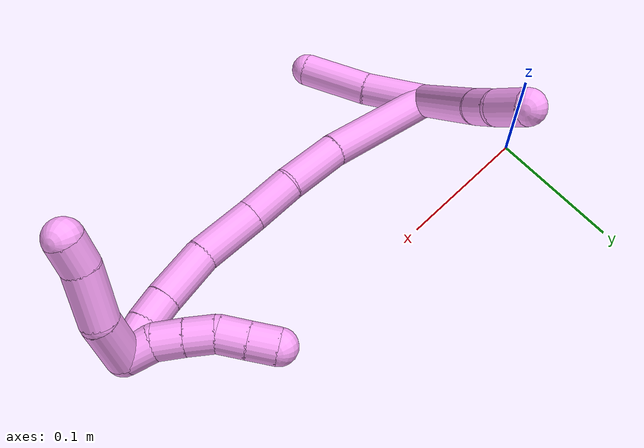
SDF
<sdf version="1.7">
 <world name="default">
  <model name="4">
   <static>0</static>
   <link name="4">
    <collision name="collision-cylinder-e_1_2_8">
     <pose>-0.014821 0.026364 0.039945 -0.583371 -0.300295 0.090785</pose>
     <geometry><cylinder><radius>0.0125</radius><length>0.100207</length></cylinder></geometry>
     <surface>
      <friction><ode><mu>1.16</mu><mu2>1.16</mu2><slip1>0</slip1><slip2>0</slip2></ode></friction>
      <contact><ode><kp>1e+06</kp><kd>1</kd><max_vel>0</max_vel><min_depth>0.001</min_depth></ode></contact>
     </surface>
    </collision>
    <visual name="visual-cylinder-e_1_2_8">
     <pose>-0.014821 0.026364 0.039945 -0.583371 -0.300295 0.090785</pose>
     <geometry><cylinder><radius>0.0125</radius><length>0.100207</length></cylinder></geometry>
     <material><ambient>1 0.65098 0.996078 1</ambient></material>
    </visual>
    <collision name="collision-cylinder-e_2_8_9">
     <pose>-0.033493 0.059829 0.087687 -0.73876 -0.350192 0.136766</pose>
     <geometry><cylinder><radius>0.0125</radius><length>0.022454</length></cylinder></geometry>
     <surface>
      <friction><ode><mu>1.16</mu><mu2>1.16</mu2><slip1>0</slip1><slip2>0</slip2></ode></friction>
      <contact><ode><kp>1e+06</kp><kd>1</kd><max_vel>0</max_vel><min_depth>0.001</min_depth></ode></contact>
     </surface>
    </collision>
    <visual name="visual-cylinder-e_2_8_9">
     <pose>-0.033493 0.059829 0.087687 -0.73876 -0.350192 0.136766</pose>
     <geometry><cylinder><radius>0.0125</radius><length>0.022454</length></cylinder></geometry>
     <material><ambient>1 0.65098 0.996078 1</ambient></material>
    </visual>
    <collision name="collision-cylinder-e_3_9_6">
     <pose>-0.042738 0.07746 0.102331 -0.994238 -0.405594 0.22221</pose>
     <geometry><cylinder><radius>0.0125</radius><length>0.02734</length></cylinder></geometry>
     <surface>
      <friction><ode><mu>1.16</mu><mu2>1.16</mu2><slip1>0</slip1><slip2>0</slip2></ode></friction>
      <contact><ode><kp>1e+06</kp><kd>1</kd><max_vel>0</max_vel><min_depth>0.001</min_depth></ode></contact>
     </surface>
    </collision>
    <visual name="visual-cylinder-e_3_9_6">
     <pose>-0.042738 0.07746 0.102331 -0.994238 -0.405594 0.22221</pose>
     <geometry><cylinder><radius>0.0125</radius><length>0.02734</length></cylinder></geometry>
     <material><ambient>1 0.65098 0.996078 1</ambient></material>
    </visual>
    <collision name="collision-cylinder-e_1_2_10">
     <pose>0.003351 -0.023622 0.000468 1.55097 0.140905 0.138147</pose>
     <geometry><cylinder><radius>0.0125</radius><length>0.047727</length></cylinder></geometry>
     <surface>
      <friction><ode><mu>1.16</mu><mu2>1.16</mu2><slip1>0</slip1><slip2>0</slip2></ode></friction>
      <contact><ode><kp>1e+06</kp><kd>1</kd><max_vel>0</max_vel><min_depth>0.001</min_depth></ode></contact>
     </surface>
    </collision>
    <visual name="visual-cylinder-e_1_2_10">
     <pose>0.003351 -0.023622 0.000468 1.55097 0.140905 0.138147</pose>
     <geometry><cylinder><radius>0.0125</radius><length>0.047727</length></cylinder></geometry>
     <material><ambient>1 0.65098 0.996078 1</ambient></material>
    </visual>
    <collision name="collision-cylinder-e_2_10_5">
     <pose>0.007737 -0.073356 0.000455 1.58924 0.039577 0.040313</pose>
     <geometry><cylinder><radius>0.0125</radius><length>0.052273</length></cylinder></geometry>
     <surface>
      <friction><ode><mu>1.16</mu><mu2>1.16</mu2><slip1>0</slip1><slip2>0</slip2></ode></friction>
      <contact><ode><kp>1e+06</kp><kd>1</kd><max_vel>0</max_vel><min_depth>0.001</min_depth></ode></contact>
     </surface>
    </collision>
    <visual name="visual-cylinder-e_2_10_5">
     <pose>0.007737 -0.073356 0.000455 1.58924 0.039577 0.040313</pose>
     <geometry><cylinder><radius>0.0125</radius><length>0.052273</length></cylinder></geometry>
     <material><ambient>1 0.65098 0.996078 1</ambient></material>
    </visual>
    <collision name="collision-cylinder-e_1_2_11">
     <pose>0.020153 -0.019948 0.034787 0.520654 0.465703 0.126174</pose>
     <geometry><cylinder><radius>0.0125</radius><length>0.08976</length></cylinder></geometry>
     <surface>
      <friction><ode><mu>1.16</mu><mu2>1.16</mu2><slip1>0</slip1><slip2>0</slip2></ode></friction>
      <contact><ode><kp>1e+06</kp><kd>1</kd><max_vel>0</max_vel><min_depth>0.001</min_depth></ode></contact>
     </surface>
    </collision>
    <visual name="visual-cylinder-e_1_2_11">
     <pose>0.020153 -0.019948 0.034787 0.520654 0.465703 0.126174</pose>
     <geometry><cylinder><radius>0.0125</radius><length>0.08976</length></cylinder></geometry>
     <material><ambient>1 0.65098 0.996078 1</ambient></material>
    </visual>
    <collision name="collision-cylinder-e_2_11_12">
     <pose>0.051481 -0.047194 0.087364 0.389306 0.526421 0.106149</pose>
     <geometry><cylinder><radius>0.0125</radius><length>0.04448</length></cylinder></geometry>
     <surface>
      <friction><ode><mu>1.16</mu><mu2>1.16</mu2><slip1>0</slip1><slip2>0</slip2></ode></friction>
      <contact><ode><kp>1e+06</kp><kd>1</kd><max_vel>0</max_vel><min_depth>0.001</min_depth></ode></contact>
     </surface>
    </collision>
    <visual name="visual-cylinder-e_2_11_12">
     <pose>0.051481 -0.047194 0.087364 0.389306 0.526421 0.106149</pose>
     <geometry><cylinder><radius>0.0125</radius><length>0.04448</length></cylinder></geometry>
     <material><ambient>1 0.65098 0.996078 1</ambient></material>
    </visual>
    <collision name="collision-cylinder-e_3_12_13">
     <pose>0.073765 -0.060577 0.117603 0.454632 0.675789 0.162197</pose>
     <geometry><cylinder><radius>0.0125</radius><length>0.035521</length></cylinder></geometry>
     <surface>
      <friction><ode><mu>1.16</mu><mu2>1.16</mu2><slip1>0</slip1><slip2>0</slip2></ode></friction>
      <contact><ode><kp>1e+06</kp><kd>1</kd><max_vel>0</max_vel><min_depth>0.001</min_depth></ode></contact>
     </surface>
    </collision>
    <visual name="visual-cylinder-e_3_12_13">
     <pose>0.073765 -0.060577 0.117603 0.454632 0.675789 0.162197</pose>
     <geometry><cylinder><radius>0.0125</radius><length>0.035521</length></cylinder></geometry>
     <material><ambient>1 0.65098 0.996078 1</ambient></material>
    </visual>
    <collision name="collision-cylinder-e_4_13_14">
     <pose>0.09708 -0.07388 0.147458 0.393085 0.57483 0.11758</pose>
     <geometry><cylinder><radius>0.0125</radius><length>0.0449</length></cylinder></geometry>
     <surface>
      <friction><ode><mu>1.16</mu><mu2>1.16</mu2><slip1>0</slip1><slip2>0</slip2></ode></friction>
      <contact><ode><kp>1e+06</kp><kd>1</kd><max_vel>0</max_vel><min_depth>0.001</min_depth></ode></contact>
     </surface>
    </collision>
    <visual name="visual-cylinder-e_4_13_14">
     <pose>0.09708 -0.07388 0.147458 0.393085 0.57483 0.11758</pose>
     <geometry><cylinder><radius>0.0125</radius><length>0.0449</length></cylinder></geometry>
     <material><ambient>1 0.65098 0.996078 1</ambient></material>
    </visual>
    <collision name="collision-cylinder-e_5_14_15">
     <pose>0.120549 -0.083762 0.181179 0.161884 0.598017 0.05</pose>
     <geometry><cylinder><radius>0.0125</radius><length>0.040008</length></cylinder></geometry>
     <surface>
      <friction><ode><mu>1.16</mu><mu2>1.16</mu2><slip1>0</slip1><slip2>0</slip2></ode></friction>
      <contact><ode><kp>1e+06</kp><kd>1</kd><max_vel>0</max_vel><min_depth>0.001</min_depth></ode></contact>
     </surface>
    </collision>
    <visual name="visual-cylinder-e_5_14_15">
     <pose>0.120549 -0.083762 0.181179 0.161884 0.598017 0.05</pose>
     <geometry><cylinder><radius>0.0125</radius><length>0.040008</length></cylinder></geometry>
     <material><ambient>1 0.65098 0.996078 1</ambient></material>
    </visual>
    <collision name="collision-cylinder-e_6_15_16">
     <pose>0.13774 -0.087123 0.205779 0.083921 0.619543 0.026875</pose>
     <geometry><cylinder><radius>0.0125</radius><length>0.020421</length></cylinder></geometry>
     <surface>
      <friction><ode><mu>1.16</mu><mu2>1.16</mu2><slip1>0</slip1><slip2>0</slip2></ode></friction>
      <contact><ode><kp>1e+06</kp><kd>1</kd><max_vel>0</max_vel><min_depth>0.001</min_depth></ode></contact>
     </surface>
    </collision>
    <visual name="visual-cylinder-e_6_15_16">
     <pose>0.13774 -0.087123 0.205779 0.083921 0.619543 0.026875</pose>
     <geometry><cylinder><radius>0.0125</radius><length>0.020421</length></cylinder></geometry>
     <material><ambient>1 0.65098 0.996078 1</ambient></material>
    </visual>
    <collision name="collision-cylinder-e_7_16_1">
     <pose>0.150733 -0.086999 0.224288 -0.080068 0.603073 -0.024915</pose>
     <geometry><cylinder><radius>0.0125</radius><length>0.024909</length></cylinder></geometry>
     <surface>
      <friction><ode><mu>1.16</mu><mu2>1.16</mu2><slip1>0</slip1><slip2>0</slip2></ode></friction>
      <contact><ode><kp>1e+06</kp><kd>1</kd><max_vel>0</max_vel><min_depth>0.001</min_depth></ode></contact>
     </surface>
    </collision>
    <visual name="visual-cylinder-e_7_16_1">
     <pose>0.150733 -0.086999 0.224288 -0.080068 0.603073 -0.024915</pose>
     <geometry><cylinder><radius>0.0125</radius><length>0.024909</length></cylinder></geometry>
     <material><ambient>1 0.65098 0.996078 1</ambient></material>
    </visual>
    <collision name="collision-cylinder-e_1_1_17">
     <pose>0.141963 -0.091151 0.244786 0.450753 -0.946241 -0.233658</pose>
     <geometry><cylinder><radius>0.0125</radius><length>0.039036</length></cylinder></geometry>
     <surface>
      <friction><ode><mu>1.16</mu><mu2>1.16</mu2><slip1>0</slip1><slip2>0</slip2></ode></friction>
      <contact><ode><kp>1e+06</kp><kd>1</kd><max_vel>0</max_vel><min_depth>0.001</min_depth></ode></contact>
     </surface>
    </collision>
    <visual name="visual-cylinder-e_1_1_17">
     <pose>0.141963 -0.091151 0.244786 0.450753 -0.946241 -0.233658</pose>
     <geometry><cylinder><radius>0.0125</radius><length>0.039036</length></cylinder></geometry>
     <material><ambient>1 0.65098 0.996078 1</ambient></material>
    </visual>
    <collision name="collision-cylinder-e_2_17_18">
     <pose>0.108255 -0.102579 0.259574 0.960398 -1.15565 -0.654826</pose>
     <geometry><cylinder><radius>0.0125</radius><length>0.039067</length></cylinder></geometry>
     <surface>
      <friction><ode><mu>1.16</mu><mu2>1.16</mu2><slip1>0</slip1><slip2>0</slip2></ode></friction>
      <contact><ode><kp>1e+06</kp><kd>1</kd><max_vel>0</max_vel><min_depth>0.001</min_depth></ode></contact>
     </surface>
    </collision>
    <visual name="visual-cylinder-e_2_17_18">
     <pose>0.108255 -0.102579 0.259574 0.960398 -1.15565 -0.654826</pose>
     <geometry><cylinder><radius>0.0125</radius><length>0.039067</length></cylinder></geometry>
     <material><ambient>1 0.65098 0.996078 1</ambient></material>
    </visual>
    <collision name="collision-cylinder-e_3_18_4">
     <pose>0.081281 -0.113407 0.268326 0.801283 -0.981168 -0.444978</pose>
     <geometry><cylinder><radius>0.0125</radius><length>0.021897</length></cylinder></geometry>
     <surface>
      <friction><ode><mu>1.16</mu><mu2>1.16</mu2><slip1>0</slip1><slip2>0</slip2></ode></friction>
      <contact><ode><kp>1e+06</kp><kd>1</kd><max_vel>0</max_vel><min_depth>0.001</min_depth></ode></contact>
     </surface>
    </collision>
    <visual name="visual-cylinder-e_3_18_4">
     <pose>0.081281 -0.113407 0.268326 0.801283 -0.981168 -0.444978</pose>
     <geometry><cylinder><radius>0.0125</radius><length>0.021897</length></cylinder></geometry>
     <material><ambient>1 0.65098 0.996078 1</ambient></material>
    </visual>
    <collision name="collision-cylinder-e_1_1_19">
     <pose>0.15169 -0.079844 0.229762 -2.21418 -0.656955 1.19648</pose>
     <geometry><cylinder><radius>0.0125</radius><length>0.02</length></cylinder></geometry>
     <surface>
      <friction><ode><mu>1.16</mu><mu2>1.16</mu2><slip1>0</slip1><slip2>0</slip2></ode></friction>
      <contact><ode><kp>1e+06</kp><kd>1</kd><max_vel>0</max_vel><min_depth>0.001</min_depth></ode></contact>
     </surface>
    </collision>
    <visual name="visual-cylinder-e_1_1_19">
     <pose>0.15169 -0.079844 0.229762 -2.21418 -0.656955 1.19648</pose>
     <geometry><cylinder><radius>0.0125</radius><length>0.02</length></cylinder></geometry>
     <material><ambient>1 0.65098 0.996078 1</ambient></material>
    </visual>
    <collision name="collision-cylinder-e_2_19_20">
     <pose>0.141821 -0.065125 0.221064 -2.01089 -0.385622 0.597078</pose>
     <geometry><cylinder><radius>0.0125</radius><length>0.02</length></cylinder></geometry>
     <surface>
      <friction><ode><mu>1.16</mu><mu2>1.16</mu2><slip1>0</slip1><slip2>0</slip2></ode></friction>
      <contact><ode><kp>1e+06</kp><kd>1</kd><max_vel>0</max_vel><min_depth>0.001</min_depth></ode></contact>
     </surface>
    </collision>
    <visual name="visual-cylinder-e_2_19_20">
     <pose>0.141821 -0.065125 0.221064 -2.01089 -0.385622 0.597078</pose>
     <geometry><cylinder><radius>0.0125</radius><length>0.02</length></cylinder></geometry>
     <material><ambient>1 0.65098 0.996078 1</ambient></material>
    </visual>
    <collision name="collision-cylinder-e_3_20_21">
     <pose>0.134611 -0.048163 0.21331 -1.98843 -0.352127 0.534087</pose>
     <geometry><cylinder><radius>0.0125</radius><length>0.02</length></cylinder></geometry>
     <surface>
      <friction><ode><mu>1.16</mu><mu2>1.16</mu2><slip1>0</slip1><slip2>0</slip2></ode></friction>
      <contact><ode><kp>1e+06</kp><kd>1</kd><max_vel>0</max_vel><min_depth>0.001</min_depth></ode></contact>
     </surface>
    </collision>
    <visual name="visual-cylinder-e_3_20_21">
     <pose>0.134611 -0.048163 0.21331 -1.98843 -0.352127 0.534087</pose>
     <geometry><cylinder><radius>0.0125</radius><length>0.02</length></cylinder></geometry>
     <material><ambient>1 0.65098 0.996078 1</ambient></material>
    </visual>
    <collision name="collision-cylinder-e_4_21_22">
     <pose>0.130613 -0.030015 0.20665 -1.86056 -0.054924 0.073675</pose>
     <geometry><cylinder><radius>0.0125</radius><length>0.02</length></cylinder></geometry>
     <surface>
      <friction><ode><mu>1.16</mu><mu2>1.16</mu2><slip1>0</slip1><slip2>0</slip2></ode></friction>
      <contact><ode><kp>1e+06</kp><kd>1</kd><max_vel>0</max_vel><min_depth>0.001</min_depth></ode></contact>
     </surface>
    </collision>
    <visual name="visual-cylinder-e_4_21_22">
     <pose>0.130613 -0.030015 0.20665 -1.86056 -0.054924 0.073675</pose>
     <geometry><cylinder><radius>0.0125</radius><length>0.02</length></cylinder></geometry>
     <material><ambient>1 0.65098 0.996078 1</ambient></material>
    </visual>
    <collision name="collision-cylinder-e_5_22_3">
     <pose>0.129479 -0.010895 0.200892 -1.86608 -0.058566 0.079012</pose>
     <geometry><cylinder><radius>0.0125</radius><length>0.02</length></cylinder></geometry>
     <surface>
      <friction><ode><mu>1.16</mu><mu2>1.16</mu2><slip1>0</slip1><slip2>0</slip2></ode></friction>
      <contact><ode><kp>1e+06</kp><kd>1</kd><max_vel>0</max_vel><min_depth>0.001</min_depth></ode></contact>
     </surface>
    </collision>
    <visual name="visual-cylinder-e_5_22_3">
     <pose>0.129479 -0.010895 0.200892 -1.86608 -0.058566 0.079012</pose>
     <geometry><cylinder><radius>0.0125</radius><length>0.02</length></cylinder></geometry>
     <material><ambient>1 0.65098 0.996078 1</ambient></material>
    </visual>
    <collision name="collision-sphere-3">
     <pose>0.128893 -0.001345 0.197986 0 -0 0</pose>
     <geometry><sphere><radius>0.0125</radius></sphere></geometry>
     <surface>
      <friction><ode><mu>1.16</mu><mu2>1.16</mu2><slip1>0</slip1><slip2>0</slip2></ode></friction>
      <contact><ode><kp>1e+06</kp><kd>1</kd><max_vel>0</max_vel><min_depth>0.001</min_depth></ode></contact>
     </surface>
    </collision>
    <visual name="visual-sphere-3">
     <pose>0.128893 -0.001345 0.197986 0 -0 0</pose>
     <geometry><sphere><radius>0.0125</radius></sphere></geometry>
     <material><ambient>1 0.65098 0.996078 1</ambient></material>
    </visual>
    <collision name="collision-sphere-22">
     <pose>0.130064 -0.020446 0.203797 0 -0 0</pose>
     <geometry><sphere><radius>0.0125</radius></sphere></geometry>
     <surface>
      <friction><ode><mu>1.16</mu><mu2>1.16</mu2><slip1>0</slip1><slip2>0</slip2></ode></friction>
      <contact><ode><kp>1e+06</kp><kd>1</kd><max_vel>0</max_vel><min_depth>0.001</min_depth></ode></contact>
     </surface>
    </collision>
    <visual name="visual-sphere-22">
     <pose>0.130064 -0.020446 0.203797 0 -0 0</pose>
     <geometry><sphere><radius>0.0125</radius></sphere></geometry>
     <material><ambient>1 0.65098 0.996078 1</ambient></material>
    </visual>
    <collision name="collision-sphere-21">
     <pose>0.131162 -0.039583 0.209503 0 -0 0</pose>
     <geometry><sphere><radius>0.0125</radius></sphere></geometry>
     <surface>
      <friction><ode><mu>1.16</mu><mu2>1.16</mu2><slip1>0</slip1><slip2>0</slip2></ode></friction>
      <contact><ode><kp>1e+06</kp><kd>1</kd><max_vel>0</max_vel><min_depth>0.001</min_depth></ode></contact>
     </surface>
    </collision>
    <visual name="visual-sphere-21">
     <pose>0.131162 -0.039583 0.209503 0 -0 0</pose>
     <geometry><sphere><radius>0.0125</radius></sphere></geometry>
     <material><ambient>1 0.65098 0.996078 1</ambient></material>
    </visual>
    <collision name="collision-sphere-20">
     <pose>0.13806 -0.056743 0.217117 0 -0 0</pose>
     <geometry><sphere><radius>0.0125</radius></sphere></geometry>
     <surface>
      <friction><ode><mu>1.16</mu><mu2>1.16</mu2><slip1>0</slip1><slip2>0</slip2></ode></friction>
      <contact><ode><kp>1e+06</kp><kd>1</kd><max_vel>0</max_vel><min_depth>0.001</min_depth></ode></contact>
     </surface>
    </collision>
    <visual name="visual-sphere-20">
     <pose>0.13806 -0.056743 0.217117 0 -0 0</pose>
     <geometry><sphere><radius>0.0125</radius></sphere></geometry>
     <material><ambient>1 0.65098 0.996078 1</ambient></material>
    </visual>
    <collision name="collision-sphere-19">
     <pose>0.145583 -0.073508 0.225012 0 -0 0</pose>
     <geometry><sphere><radius>0.0125</radius></sphere></geometry>
     <surface>
      <friction><ode><mu>1.16</mu><mu2>1.16</mu2><slip1>0</slip1><slip2>0</slip2></ode></friction>
      <contact><ode><kp>1e+06</kp><kd>1</kd><max_vel>0</max_vel><min_depth>0.001</min_depth></ode></contact>
     </surface>
    </collision>
    <visual name="visual-sphere-19">
     <pose>0.145583 -0.073508 0.225012 0 -0 0</pose>
     <geometry><sphere><radius>0.0125</radius></sphere></geometry>
     <material><ambient>1 0.65098 0.996078 1</ambient></material>
    </visual>
    <collision name="collision-sphere-5">
     <pose>0.008771 -0.099468 -2.6e-05 0 -0 0</pose>
     <geometry><sphere><radius>0.0125</radius></sphere></geometry>
     <surface>
      <friction><ode><mu>1.16</mu><mu2>1.16</mu2><slip1>0</slip1><slip2>0</slip2></ode></friction>
      <contact><ode><kp>1e+06</kp><kd>1</kd><max_vel>0</max_vel><min_depth>0.001</min_depth></ode></contact>
     </surface>
    </collision>
    <visual name="visual-sphere-5">
     <pose>0.008771 -0.099468 -2.6e-05 0 -0 0</pose>
     <geometry><sphere><radius>0.0125</radius></sphere></geometry>
     <material><ambient>1 0.65098 0.996078 1</ambient></material>
    </visual>
    <collision name="collision-sphere-10">
     <pose>0.006703 -0.047245 0.000937 0 -0 0</pose>
     <geometry><sphere><radius>0.0125</radius></sphere></geometry>
     <surface>
      <friction><ode><mu>1.16</mu><mu2>1.16</mu2><slip1>0</slip1><slip2>0</slip2></ode></friction>
      <contact><ode><kp>1e+06</kp><kd>1</kd><max_vel>0</max_vel><min_depth>0.001</min_depth></ode></contact>
     </surface>
    </collision>
    <visual name="visual-sphere-10">
     <pose>0.006703 -0.047245 0.000937 0 -0 0</pose>
     <geometry><sphere><radius>0.0125</radius></sphere></geometry>
     <material><ambient>1 0.65098 0.996078 1</ambient></material>
    </visual>
    <collision name="collision-sphere-6">
     <pose>-0.048132 0.08799 0.109178 0 -0 0</pose>
     <geometry><sphere><radius>0.0125</radius></sphere></geometry>
     <surface>
      <friction><ode><mu>1.16</mu><mu2>1.16</mu2><slip1>0</slip1><slip2>0</slip2></ode></friction>
      <contact><ode><kp>1e+06</kp><kd>1</kd><max_vel>0</max_vel><min_depth>0.001</min_depth></ode></contact>
     </surface>
    </collision>
    <visual name="visual-sphere-6">
     <pose>-0.048132 0.08799 0.109178 0 -0 0</pose>
     <geometry><sphere><radius>0.0125</radius></sphere></geometry>
     <material><ambient>1 0.65098 0.996078 1</ambient></material>
    </visual>
    <collision name="collision-sphere-9">
     <pose>-0.037345 0.06693 0.095483 0 -0 0</pose>
     <geometry><sphere><radius>0.0125</radius></sphere></geometry>
     <surface>
      <friction><ode><mu>1.16</mu><mu2>1.16</mu2><slip1>0</slip1><slip2>0</slip2></ode></friction>
      <contact><ode><kp>1e+06</kp><kd>1</kd><max_vel>0</max_vel><min_depth>0.001</min_depth></ode></contact>
     </surface>
    </collision>
    <visual name="visual-sphere-9">
     <pose>-0.037345 0.06693 0.095483 0 -0 0</pose>
     <geometry><sphere><radius>0.0125</radius></sphere></geometry>
     <material><ambient>1 0.65098 0.996078 1</ambient></material>
    </visual>
    <collision name="collision-sphere-2">
     <geometry><sphere><radius>0.0125</radius></sphere></geometry>
     <surface>
      <friction><ode><mu>1.16</mu><mu2>1.16</mu2><slip1>0</slip1><slip2>0</slip2></ode></friction>
      <contact><ode><kp>1e+06</kp><kd>1</kd><max_vel>0</max_vel><min_depth>0.001</min_depth></ode></contact>
     </surface>
    </collision>
    <visual name="visual-sphere-2">
     <geometry><sphere><radius>0.0125</radius></sphere></geometry>
     <material><ambient>1 0.65098 0.996078 1</ambient></material>
    </visual>
    <collision name="collision-sphere-8">
     <pose>-0.029641 0.052728 0.079891 0 -0 0</pose>
     <geometry><sphere><radius>0.0125</radius></sphere></geometry>
     <surface>
      <friction><ode><mu>1.16</mu><mu2>1.16</mu2><slip1>0</slip1><slip2>0</slip2></ode></friction>
      <contact><ode><kp>1e+06</kp><kd>1</kd><max_vel>0</max_vel><min_depth>0.001</min_depth></ode></contact>
     </surface>
    </collision>
    <visual name="visual-sphere-8">
     <pose>-0.029641 0.052728 0.079891 0 -0 0</pose>
     <geometry><sphere><radius>0.0125</radius></sphere></geometry>
     <material><ambient>1 0.65098 0.996078 1</ambient></material>
    </visual>
    <collision name="collision-sphere-11">
     <pose>0.040307 -0.039896 0.069574 0 -0 0</pose>
     <geometry><sphere><radius>0.0125</radius></sphere></geometry>
     <surface>
      <friction><ode><mu>1.16</mu><mu2>1.16</mu2><slip1>0</slip1><slip2>0</slip2></ode></friction>
      <contact><ode><kp>1e+06</kp><kd>1</kd><max_vel>0</max_vel><min_depth>0.001</min_depth></ode></contact>
     </surface>
    </collision>
    <visual name="visual-sphere-11">
     <pose>0.040307 -0.039896 0.069574 0 -0 0</pose>
     <geometry><sphere><radius>0.0125</radius></sphere></geometry>
     <material><ambient>1 0.65098 0.996078 1</ambient></material>
    </visual>
    <collision name="collision-sphere-12">
     <pose>0.062655 -0.054492 0.105154 0 -0 0</pose>
     <geometry><sphere><radius>0.0125</radius></sphere></geometry>
     <surface>
      <friction><ode><mu>1.16</mu><mu2>1.16</mu2><slip1>0</slip1><slip2>0</slip2></ode></friction>
      <contact><ode><kp>1e+06</kp><kd>1</kd><max_vel>0</max_vel><min_depth>0.001</min_depth></ode></contact>
     </surface>
    </collision>
    <visual name="visual-sphere-12">
     <pose>0.062655 -0.054492 0.105154 0 -0 0</pose>
     <geometry><sphere><radius>0.0125</radius></sphere></geometry>
     <material><ambient>1 0.65098 0.996078 1</ambient></material>
    </visual>
    <collision name="collision-sphere-13">
     <pose>0.084874 -0.066662 0.130053 0 -0 0</pose>
     <geometry><sphere><radius>0.0125</radius></sphere></geometry>
     <surface>
      <friction><ode><mu>1.16</mu><mu2>1.16</mu2><slip1>0</slip1><slip2>0</slip2></ode></friction>
      <contact><ode><kp>1e+06</kp><kd>1</kd><max_vel>0</max_vel><min_depth>0.001</min_depth></ode></contact>
     </surface>
    </collision>
    <visual name="visual-sphere-13">
     <pose>0.084874 -0.066662 0.130053 0 -0 0</pose>
     <geometry><sphere><radius>0.0125</radius></sphere></geometry>
     <material><ambient>1 0.65098 0.996078 1</ambient></material>
    </visual>
    <collision name="collision-sphere-14">
     <pose>0.109286 -0.081097 0.164863 0 -0 0</pose>
     <geometry><sphere><radius>0.0125</radius></sphere></geometry>
     <surface>
      <friction><ode><mu>1.16</mu><mu2>1.16</mu2><slip1>0</slip1><slip2>0</slip2></ode></friction>
      <contact><ode><kp>1e+06</kp><kd>1</kd><max_vel>0</max_vel><min_depth>0.001</min_depth></ode></contact>
     </surface>
    </collision>
    <visual name="visual-sphere-14">
     <pose>0.109286 -0.081097 0.164863 0 -0 0</pose>
     <geometry><sphere><radius>0.0125</radius></sphere></geometry>
     <material><ambient>1 0.65098 0.996078 1</ambient></material>
    </visual>
    <collision name="collision-sphere-15">
     <pose>0.131811 -0.086426 0.197496 0 -0 0</pose>
     <geometry><sphere><radius>0.0125</radius></sphere></geometry>
     <surface>
      <friction><ode><mu>1.16</mu><mu2>1.16</mu2><slip1>0</slip1><slip2>0</slip2></ode></friction>
      <contact><ode><kp>1e+06</kp><kd>1</kd><max_vel>0</max_vel><min_depth>0.001</min_depth></ode></contact>
     </surface>
    </collision>
    <visual name="visual-sphere-15">
     <pose>0.131811 -0.086426 0.197496 0 -0 0</pose>
     <geometry><sphere><radius>0.0125</radius></sphere></geometry>
     <material><ambient>1 0.65098 0.996078 1</ambient></material>
    </visual>
    <collision name="collision-sphere-16">
     <pose>0.143669 -0.08782 0.214063 0 -0 0</pose>
     <geometry><sphere><radius>0.0125</radius></sphere></geometry>
     <surface>
      <friction><ode><mu>1.16</mu><mu2>1.16</mu2><slip1>0</slip1><slip2>0</slip2></ode></friction>
      <contact><ode><kp>1e+06</kp><kd>1</kd><max_vel>0</max_vel><min_depth>0.001</min_depth></ode></contact>
     </surface>
    </collision>
    <visual name="visual-sphere-16">
     <pose>0.143669 -0.08782 0.214063 0 -0 0</pose>
     <geometry><sphere><radius>0.0125</radius></sphere></geometry>
     <material><ambient>1 0.65098 0.996078 1</ambient></material>
    </visual>
    <collision name="collision-sphere-1">
     <pose>0.157797 -0.086179 0.234512 0 -0 0</pose>
     <geometry><sphere><radius>0.0125</radius></sphere></geometry>
     <surface>
      <friction><ode><mu>1.16</mu><mu2>1.16</mu2><slip1>0</slip1><slip2>0</slip2></ode></friction>
      <contact><ode><kp>1e+06</kp><kd>1</kd><max_vel>0</max_vel><min_depth>0.001</min_depth></ode></contact>
     </surface>
    </collision>
    <visual name="visual-sphere-1">
     <pose>0.157797 -0.086179 0.234512 0 -0 0</pose>
     <geometry><sphere><radius>0.0125</radius></sphere></geometry>
     <material><ambient>1 0.65098 0.996078 1</ambient></material>
    </visual>
    <collision name="collision-sphere-18">
     <pose>0.090381 -0.109034 0.26409 0 -0 0</pose>
     <geometry><sphere><radius>0.0125</radius></sphere></geometry>
     <surface>
      <friction><ode><mu>1.16</mu><mu2>1.16</mu2><slip1>0</slip1><slip2>0</slip2></ode></friction>
      <contact><ode><kp>1e+06</kp><kd>1</kd><max_vel>0</max_vel><min_depth>0.001</min_depth></ode></contact>
     </surface>
    </collision>
    <visual name="visual-sphere-18">
     <pose>0.090381 -0.109034 0.26409 0 -0 0</pose>
     <geometry><sphere><radius>0.0125</radius></sphere></geometry>
     <material><ambient>1 0.65098 0.996078 1</ambient></material>
    </visual>
    <collision name="collision-sphere-17">
     <pose>0.12613 -0.096123 0.255059 0 -0 0</pose>
     <geometry><sphere><radius>0.0125</radius></sphere></geometry>
     <surface>
      <friction><ode><mu>1.16</mu><mu2>1.16</mu2><slip1>0</slip1><slip2>0</slip2></ode></friction>
      <contact><ode><kp>1e+06</kp><kd>1</kd><max_vel>0</max_vel><min_depth>0.001</min_depth></ode></contact>
     </surface>
    </collision>
    <visual name="visual-sphere-17">
     <pose>0.12613 -0.096123 0.255059 0 -0 0</pose>
     <geometry><sphere><radius>0.0125</radius></sphere></geometry>
     <material><ambient>1 0.65098 0.996078 1</ambient></material>
    </visual>
    <collision name="collision-sphere-4">
     <pose>0.072182 -0.117779 0.272562 0 -0 0</pose>
     <geometry><sphere><radius>0.0125</radius></sphere></geometry>
     <surface>
      <friction><ode><mu>1.16</mu><mu2>1.16</mu2><slip1>0</slip1><slip2>0</slip2></ode></friction>
      <contact><ode><kp>1e+06</kp><kd>1</kd><max_vel>0</max_vel><min_depth>0.001</min_depth></ode></contact>
     </surface>
    </collision>
    <visual name="visual-sphere-4">
     <pose>0.072182 -0.117779 0.272562 0 -0 0</pose>
     <geometry><sphere><radius>0.0125</radius></sphere></geometry>
     <material><ambient>1 0.65098 0.996078 1</ambient></material>
    </visual>
    <inertial>
     <pose>0.059923 -0.040326 0.120887 0 -0 0</pose>
     <mass>0.75</mass>
     <inertia><ixx>0.00023</ixx><ixy>0</ixy><ixz>0</ixz><iyy>0.000196</iyy><iyz>0</iyz><izz>3e-05</izz></inertia>
    </inertial>
   </link>
   <pose>0.026448 -0.06594 0.024414 0.082899 0.765645 0.431849</pose>
  </model>
 </world>
</sdf>
